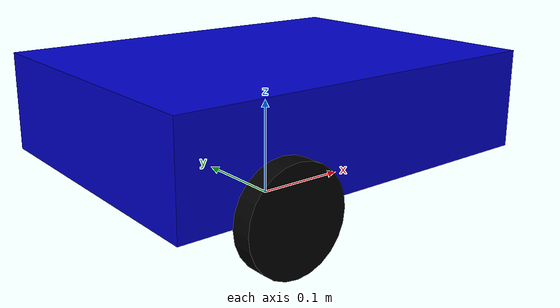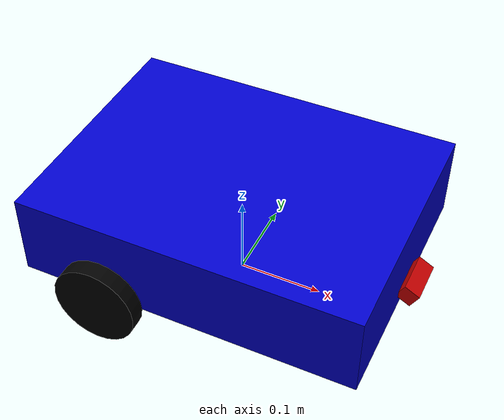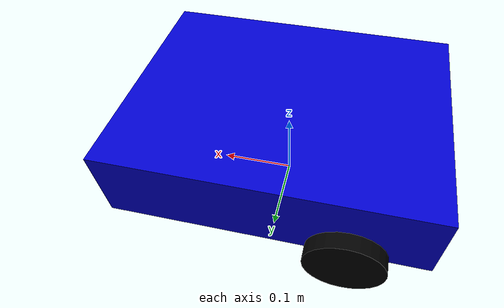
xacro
<?xml version="1.0"?>
<robot xmlns:xacro="http://www.ros.org/wiki/xacro" name="line_following_robot">

  <!-- Base Properties -->
  <xacro:property name="base_width" value="0.3"/>
  <xacro:property name="base_length" value="0.4"/>
  <xacro:property name="base_height" value="0.1"/>
  <xacro:property name="wheel_radius" value="0.05"/>
  <xacro:property name="wheel_width" value="0.02"/>

  <!-- Colors -->
  <material name="blue">
    <color rgba="0 0 0.8 1"/>
  </material>
  <material name="black">
    <color rgba="0 0 0 1"/>
  </material>
  <material name="white">
    <color rgba="1 1 1 1"/>
  </material>
  <material name="red">
    <color rgba="0.8 0 0 1"/>
  </material>

  <!-- Dummy Root Link -->
  <link name="base_footprint"/>

  <!-- Base Link -->
  <link name="base_link">
    <visual>
      <origin xyz="0 0 ${base_height/2}" rpy="0 0 0"/>
      <geometry>
        <box size="${base_length} ${base_width} ${base_height}"/>
      </geometry>
      <material name="blue"/>
    </visual>
    <collision>
      <origin xyz="0 0 ${base_height/2}" rpy="0 0 0"/>
      <geometry>
        <box size="${base_length} ${base_width} ${base_height}"/>
      </geometry>
    </collision>
    <inertial>
      <origin xyz="0 0 ${base_height/2}" rpy="0 0 0"/>
      <mass value="2.0"/>
      <inertia ixx="0.01" ixy="0.0" ixz="0.0" iyy="0.01" iyz="0.0" izz="0.01"/>
    </inertial>
  </link>

  <joint name="base_joint" type="fixed">
    <parent link="base_footprint"/>
    <child link="base_link"/>
    <origin xyz="0 0 ${wheel_radius}" rpy="0 0 0"/>
  </joint>

  <!-- Left Wheel -->
  <link name="left_wheel">
    <visual>
      <geometry>
        <cylinder radius="${wheel_radius}" length="${wheel_width}"/>
      </geometry>
      <material name="black"/>
    </visual>
    <collision>
      <geometry>
        <cylinder radius="${wheel_radius}" length="${wheel_width}"/>
      </geometry>
    </collision>
    <inertial>
      <mass value="0.5"/>
      <inertia ixx="0.001" ixy="0.0" ixz="0.0" iyy="0.001" iyz="0.0" izz="0.001"/>
    </inertial>
  </link>

  <joint name="left_wheel_joint" type="continuous">
    <parent link="base_link"/>
    <child link="left_wheel"/>
    <origin xyz="-0.1 ${base_width/2 + wheel_width/2} 0" rpy="-1.5708 0 0"/>
    <axis xyz="0 0 1"/>
  </joint>

  <!-- Right Wheel -->
  <link name="right_wheel">
    <visual>
      <geometry>
        <cylinder radius="${wheel_radius}" length="${wheel_width}"/>
      </geometry>
      <material name="black"/>
    </visual>
    <collision>
      <geometry>
        <cylinder radius="${wheel_radius}" length="${wheel_width}"/>
      </geometry>
    </collision>
    <inertial>
      <mass value="0.5"/>
      <inertia ixx="0.001" ixy="0.0" ixz="0.0" iyy="0.001" iyz="0.0" izz="0.001"/>
    </inertial>
  </link>

  <joint name="right_wheel_joint" type="continuous">
    <parent link="base_link"/>
    <child link="right_wheel"/>
    <origin xyz="-0.1 ${-base_width/2 - wheel_width/2} 0" rpy="-1.5708 0 0"/>
    <axis xyz="0 0 1"/>
  </joint>

  <!-- Caster Wheel -->
  <link name="caster_wheel">
    <visual>
      <geometry>
        <sphere radius="${wheel_radius/2}"/>
      </geometry>
      <material name="black"/>
    </visual>
    <collision>
      <geometry>
        <sphere radius="${wheel_radius/2}"/>
      </geometry>
    </collision>
    <inertial>
      <mass value="0.2"/>
      <inertia ixx="0.0001" ixy="0.0" ixz="0.0" iyy="0.0001" iyz="0.0" izz="0.0001"/>
    </inertial>
  </link>

  <joint name="caster_wheel_joint" type="fixed">
    <parent link="base_link"/>
    <child link="caster_wheel"/>
    <origin xyz="0.15 0 -0.025" rpy="0 0 0"/>
  </joint>

  <!-- Add very low friction to caster wheel in gazebo -->
  <gazebo reference="caster_wheel">
    <mu1>0.001</mu1>
    <mu2>0.001</mu2>
    <kp>1000000.0</kp>
    <kd>100.0</kd>
    <material>Gazebo/Black</material>
  </gazebo>

  <gazebo reference="base_link">
    <material>Gazebo/Blue</material>
  </gazebo>

  <gazebo reference="left_wheel">
    <material>Gazebo/Black</material>
  </gazebo>

  <gazebo reference="right_wheel">
    <material>Gazebo/Black</material>
  </gazebo>

  <!-- Camera -->
  <link name="camera_link">
    <visual>
      <geometry>
        <box size="0.02 0.05 0.02"/>
      </geometry>
      <material name="red"/>
    </visual>
    <collision>
      <geometry>
        <box size="0.02 0.05 0.02"/>
      </geometry>
    </collision>
    <inertial>
      <mass value="0.05"/>
      <inertia ixx="0.00001" ixy="0.0" ixz="0.0" iyy="0.00001" iyz="0.0" izz="0.00001"/>
    </inertial>
  </link>

  <!-- Mount camera at the front bottom face, tilted downwards slightly to see the line -->
  <joint name="camera_joint" type="fixed">
    <parent link="base_link"/>
    <child link="camera_link"/>
    <origin xyz="${base_length/2 + 0.01} 0 0.02" rpy="0 0.5 0"/>
  </joint>

  <!-- Gazebo Differential Drive Plugin -->
  <gazebo>
    <plugin name="diff_drive" filename="libgazebo_ros_diff_drive.so">
      <ros>
        <namespace>/</namespace>
        <!-- Topic for velocity commands -->
        <remapping>cmd_vel:=/cmd_vel</remapping>
        <!-- Topic for odometry -->
        <remapping>odom:=/odom</remapping>
      </ros>

      <update_rate>50.0</update_rate>

      <!-- wheels -->
      <left_joint>left_wheel_joint</left_joint>
      <right_joint>right_wheel_joint</right_joint>

      <!-- kinematics -->
      <wheel_separation>${base_width + wheel_width}</wheel_separation>
      <wheel_diameter>${2 * wheel_radius}</wheel_diameter>

      <!-- limits -->
      <max_wheel_torque>20</max_wheel_torque>
      <max_wheel_acceleration>1.0</max_wheel_acceleration>

      <!-- output -->
      <publish_odom>true</publish_odom>
      <publish_odom_tf>true</publish_odom_tf>
      <publish_wheel_tf>true</publish_wheel_tf>

      <odometry_frame>odom</odometry_frame>
      <robot_base_frame>base_footprint</robot_base_frame>
    </plugin>
  </gazebo>

  <!-- Gazebo Camera Plugin -->
  <gazebo reference="camera_link">
    <sensor type="camera" name="camera_sensor">
      <update_rate>30.0</update_rate>
      <camera name="head">
        <horizontal_fov>1.3962634</horizontal_fov>
        <image>
          <width>640</width>
          <height>480</height>
          <format>R8G8B8</format>
        </image>
        <clip>
          <near>0.02</near>
          <far>300</far>
        </clip>
      </camera>
      <plugin name="camera_controller" filename="libgazebo_ros_camera.so">
        <ros>
          <remapping>~/image_raw:=/camera/image_raw</remapping>
          <remapping>~/camera_info:=/camera/camera_info</remapping>
        </ros>
        <camera_name>camera</camera_name>
        <frame_name>camera_link</frame_name>
        <hack_baseline>0.07</hack_baseline>
      </plugin>
    </sensor>
  </gazebo>

</robot>
